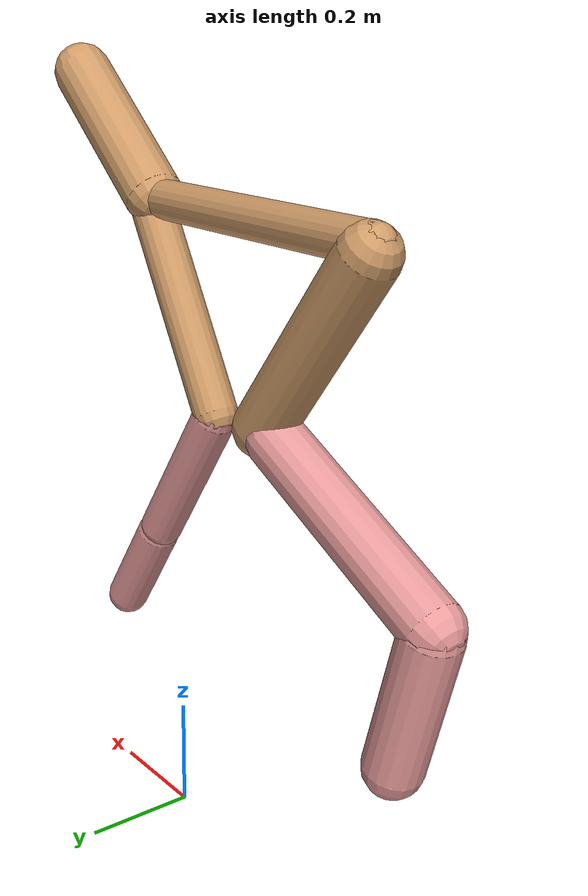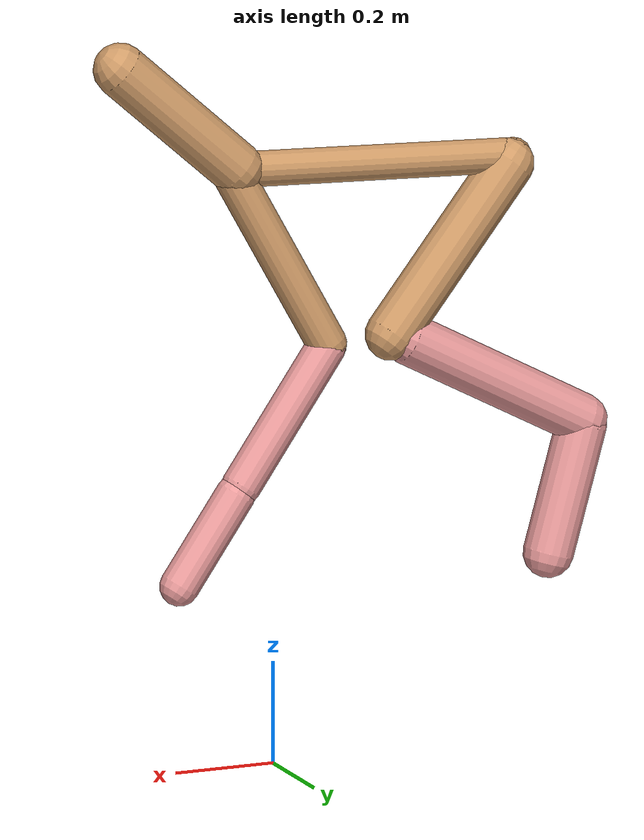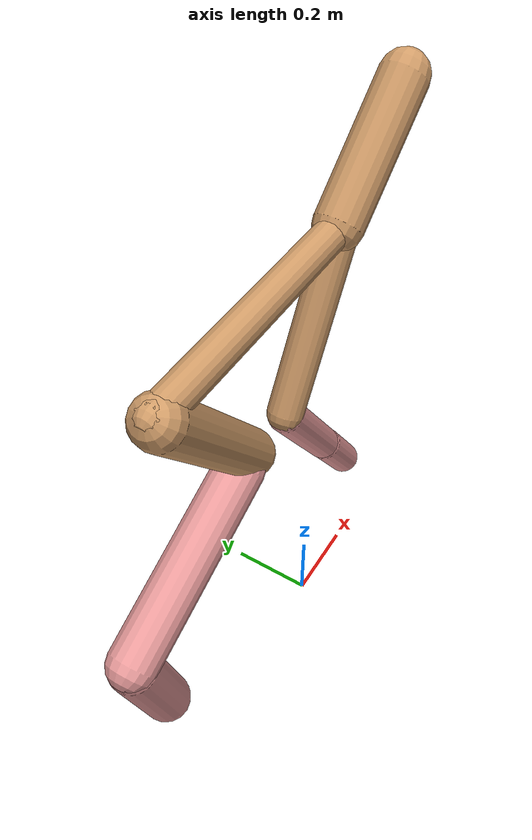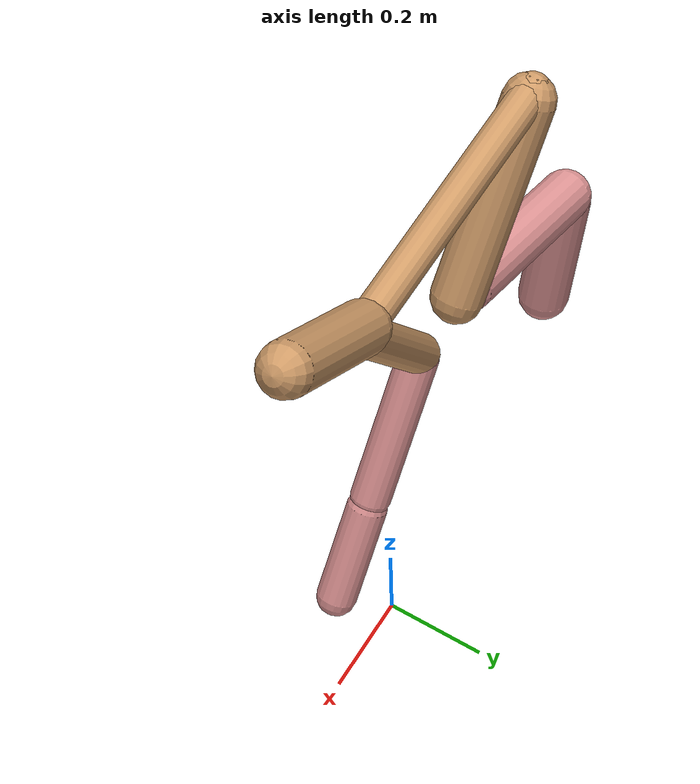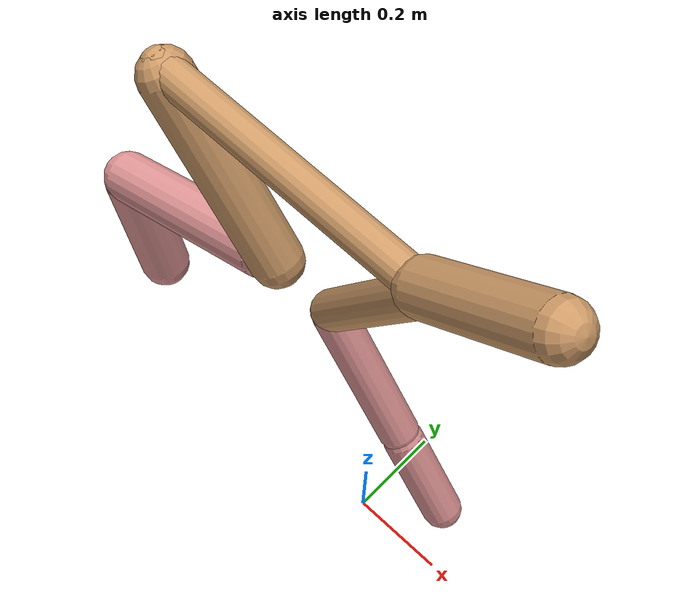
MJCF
<mujoco model="cheetah">
  <compiler angle="radian" coordinate="local" inertiafromgeom="true" settotalmass="14" />
  <default>
    <joint armature=".1" damping=".01" limited="true" solimplimit="0 .8 .03" solreflimit=".02 1" stiffness="8" />
    <geom conaffinity="0" condim="3" contype="1" friction="0.8 .1 .1" rgba="0.8 0.6 .4 1" solimp="0.0 0.8 0.01" solref="0.02 1" />
    <motor ctrllimited="true" ctrlrange="-1 1" />
  </default>
  <size nstack="300000" nuser_geom="1" />
  <option gravity="0 0 -9.81" timestep="0.01" />
  <worldbody>
    <body name="torso" pos="0.0 0.0 1.1485315585630977">
      <joint armature="0" axis="1 0 0" damping="0" limited="false" name="ignorex" pos="0 0 0" stiffness="0" type="slide" />
      <joint armature="0" axis="0 0 1" damping="0" limited="false" name="ignorez" pos="0 0 0" stiffness="0" type="slide" />
      <joint armature="0" axis="0 1 0" damping="0" limited="false" name="ignorey" pos="0 0 0" stiffness="0" type="hinge" />
      <geom fromto="-0.5 0.0 0.0 0.08506579814031107 0.0 0.0" name="torso" size="0.03398868408686634" type="capsule" />
      <geom axisangle="0 1 0 .87" name="head" pos="0.1850657981403111 0.0 0.1" size="0.05070018799343331 0.15" type="capsule" />

      <body name="bthigh" pos="-.5 0 0">
        <joint axis="0 1 0" damping="6" name="bthigh" pos="0 0 0" range="-.52 1.05" stiffness="240" type="hinge" />
        <geom axisangle="0 1 0 -3.8" name="bthigh" pos="0.13360491956466752 0.0 -0.17368639543406778" size="0.05022841114742432 0.2001161660946179" type="capsule" />
        <body name="bshin" pos="0.22720983912933504 0.0 -0.33737279086813554">
          <joint axis="0 1 0" damping="4.5" name="bshin" pos="0 0 0" range="-.785 .785" stiffness="180" type="hinge" />
          <geom axisangle="0 1 0 -2.03" name="bshin" pos="-0.19099730788140754 0.0 -0.09549865394070377" rgba="0.9 0.6 0.6 1" size="0.05022841114742432 0.20701672354615647" type="capsule" />
          <body name="bfoot" pos="-0.38199461576281507 0.0 -0.19099730788140754">
            <joint axis="0 1 0" damping="3" name="bfoot" pos="0 0 0" range="-.4 .785" stiffness="120" type="hinge" />
            <geom axisangle="0 1 0 -.27" name="bfoot" pos="0.04055727505174704 0.0 -0.1311351893339821" rgba="0.9 0.6 0.6 1" size="0.05022841114742432 0.12973048008892474" type="capsule" />
            <inertial mass="10" />
          </body>
        </body>
      </body>
      <body name="fthigh" pos="0.08506579814031112 0.0 0.0">
        <joint axis="0 1 0" damping="4.5" name="fthigh" pos="0 0 0" range="-1.5 0.8" stiffness="180" type="hinge" />
        <geom axisangle="0 1 0 .52" name="fthigh" pos="-0.1006709604831974 0.0 -0.17257878939976695" size="0.038167677124699116 0.1938706572307783" type="capsule" />
        <body name="fshin" pos="-0.2013419209663948 0.0 -0.3451575787995339">
          <joint axis="0 1 0" damping="3" name="fshin" pos="0 0 0" range="-1.2 1.1" stiffness="120" type="hinge" />
          <geom axisangle="0 1 0 -.6" name="fshin" pos="0.09340417030361925 0.0 -0.12932885118962664" rgba="0.9 0.6 0.6 1" size="0.038167677124699116 0.15451345613881576" type="capsule" />
          <body name="ffoot" pos="0.1868083406072385 0.0 -0.2586577023792533">
            <joint axis="0 1 0" damping="1.5" name="ffoot" pos="0 0 0" range="-3.1 -0.3" stiffness="60" type="hinge" />
            <geom axisangle="0 1 0 -.6" name="ffoot" pos="0.06232435262409751 0.0 -0.09694899297081835" rgba="0.9 0.6 0.6 1" size="0.038167677124699116 0.1020371880161991" type="capsule" />
            <inertial mass="10" />
          </body>
        </body>
      </body>
    </body>
  </worldbody>
  <actuator>
    <motor gear="120" joint="bthigh" name="bthigh" />
    <motor gear="90" joint="bshin" name="bshin" />
    <motor gear="60" joint="bfoot" name="bfoot" />
    <motor gear="120" joint="fthigh" name="fthigh" />
    <motor gear="60" joint="fshin" name="fshin" />
    <motor gear="30" joint="ffoot" name="ffoot" />
  </actuator>
</mujoco>
